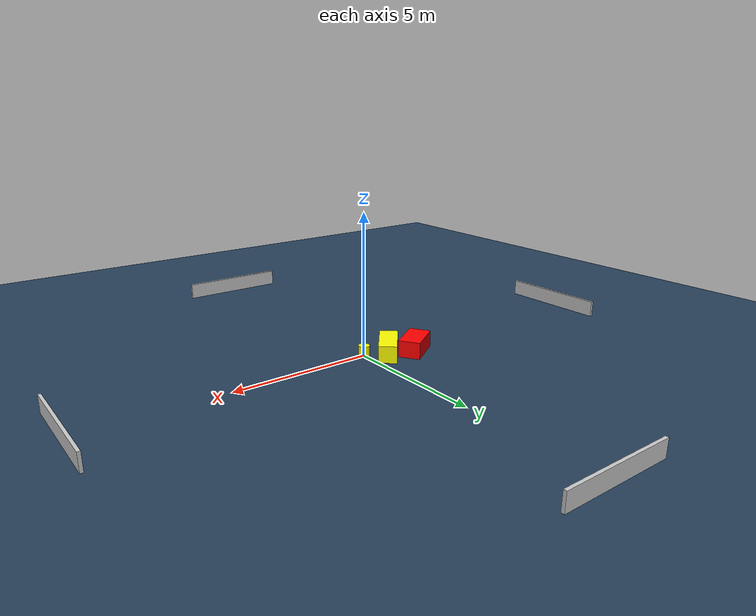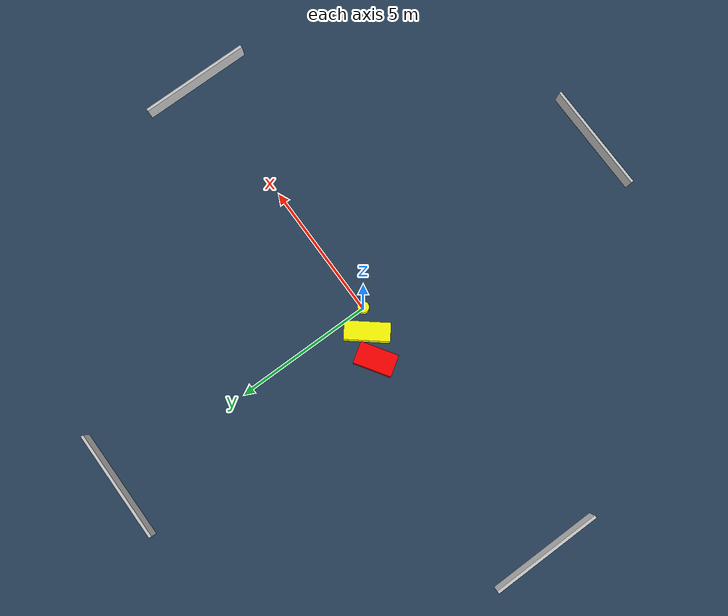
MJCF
<?xml version="1.0" ?>
<mujoco model="generated_environment">
  <option timestep="0.01" integrator="RK4" cone="elliptic"/>
  <default>
    <geom density="1"/>
  </default>
  <asset>
    <texture builtin="gradient" height="3072" name="skybox" rgb1="0.3 0.5 0.7" rgb2="0 0 0" type="skybox" width="512"/>
    <texture builtin="checker" height="300" name="groundplane" rgb1="0.2 0.3 0.4" rgb2="0.1 0.2 0.3" type="2d" width="300"/>
    <material name="groundplane" reflectance="0.2" texrepeat="5 5" texture="groundplane"/>
  </asset>
  <worldbody>
    <light dir="0 0 -1" directional="true" pos="0 0 1.5"/>
    <geom condim="3" friction="0.5 0.005 0.001" material="groundplane" name="floor" pos="0 0 0" size="0 0 0.05" type="plane"/>
    <body name="walls">
      <geom name="wall_1" condim="4" pos="-10.0 0.0 0.3" rgba="0.800000011920929 0.800000011920929 0.800000011920929 1.0" size="0.05 2.0 0.3" type="box"/>
      <geom name="wall_2" condim="4" pos="10.0 0.0 0.3" rgba="0.800000011920929 0.800000011920929 0.800000011920929 1.0" size="0.05 2.0 0.3" type="box"/>
      <geom name="wall_3" condim="4" pos="0.0 -10.0 0.3" rgba="0.800000011920929 0.800000011920929 0.800000011920929 1.0" size="2.0 0.05 0.3" type="box"/>
      <geom name="wall_4" condim="4" pos="0.0 10.0 0.3" rgba="0.800000011920929 0.800000011920929 0.800000011920929 1.0" size="2.0 0.05 0.3" type="box"/>
    </body>
    <body name="robot">
      <joint name="joint_x" type="slide" pos="0 0 0" axis="1 0 0"/>
      <joint name="joint_y" type="slide" pos="0 0 0" axis="0 1 0"/>
      <geom name="robot" type="cylinder" pos="0.0 0.0 0.2" size="0.2 0.2 0.0" mass="5.0" friction="1.0 0.005 0.0001" condim="4" rgba="1.0 1.0 0.0 1.0"/>
    </body>
    <body name="obstacle_1_movable">
      <geom name="obstacle_1_movable" condim="4" pos="-0.7525986209987078 0.3922619332896025 0.3" euler="0 0 320.6129871561814" friction="0.0 0.005 0.001" rgba="1.0 1.0 0.0 1.0" size="0.3193190853407663 0.786357172070794 0.3" type="box" mass="0.1"/>
      <joint type="free"/>
    </body>
    <body name="obstacle_2_static">
      <geom name="obstacle_2_static" condim="4" pos="-1.680524430703416 0.715063297003637 0.3" euler="0 0 33.168138917365795" friction="0.0 0.005 0.001" rgba="1.0 0.0 0.0 1.0" size="0.6757070129941829 0.38268049663587045 0.3" type="box"/>
    </body>
  </worldbody>
  <actuator>
    <motor name="actuator_x" joint="joint_x" gear="1" ctrlrange="-1 1"/>
    <motor name="actuator_y" joint="joint_y" gear="1" ctrlrange="-1 1"/>
  </actuator>
</mujoco>
